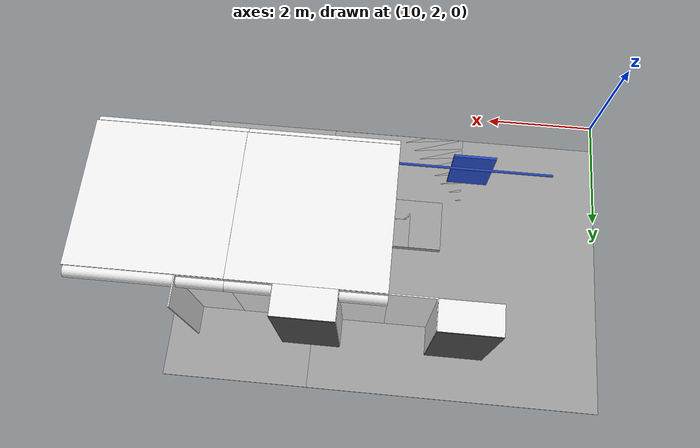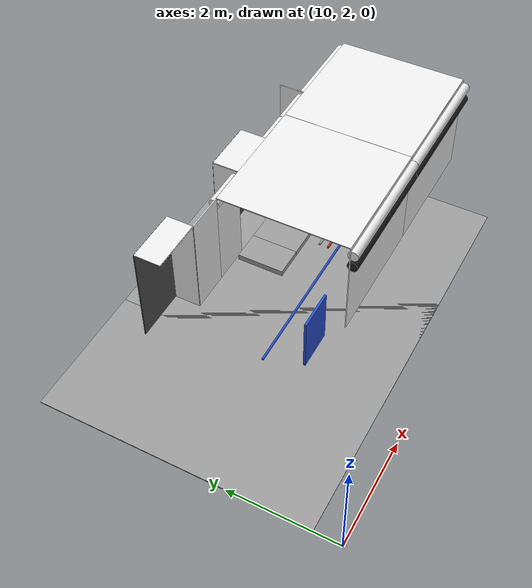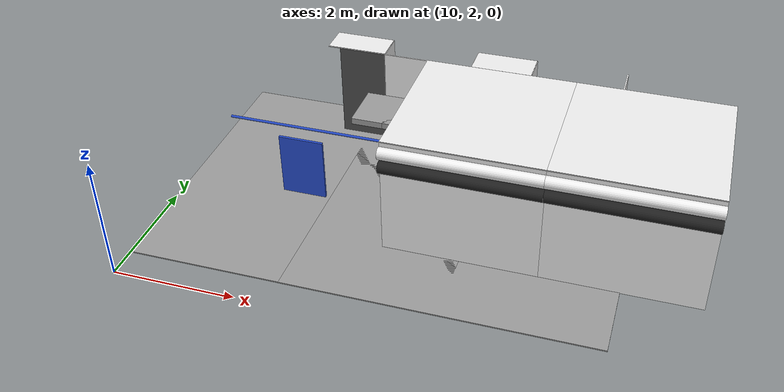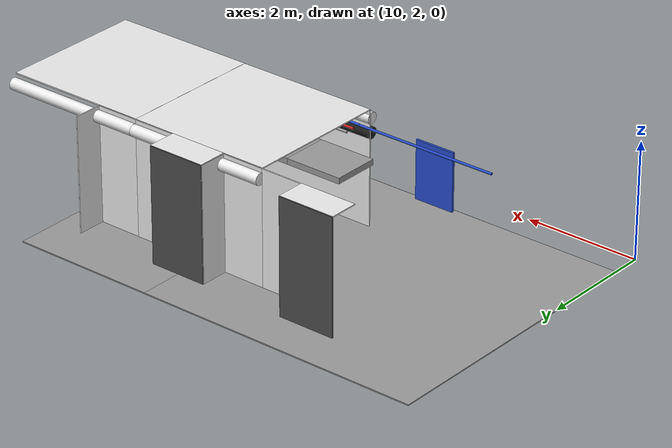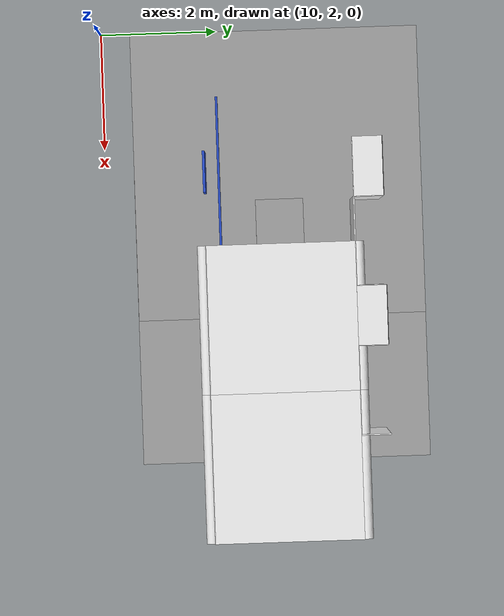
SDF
<sdf version="1.6">
 <world name="default">
  <model name="ceiling_1_5_2_2_1">
   <pose>13.5 5.0 1.7 0.0 0.0 -1.57</pose>
   <link name="link_1">
    <visual name="visual">
     <geometry><box><size>0.8 1 0.1</size></box></geometry>
     <material>
      <script><uri>file://media/materials/scripts/gazebo.material</uri><name>Gazebo/Grey</name></script>
     </material>
    </visual>
    <collision name="collision"><geometry><box><size>0.8 1 0.1</size></box></geometry></collision>
   </link>
   <static>1</static>
  </model>
  <model name="blue_pipe_right_5_2_0_1">
   <static>1</static>
   <pose>12.5 5.0 1.84 0.0 0.0 -1.57</pose>
   <link name="link_0">
    <visual name="visual">
     <pose>1 0 0 1.57 0 0</pose>
     <geometry><cylinder><radius>0.02</radius><length>2.5</length></cylinder></geometry>
     <material>
      <script><uri>file://media/materials/scripts/gazebo.material</uri><name>Gazebo/Blue</name></script>
     </material>
    </visual>
    <collision name="collision">
     <pose>1 0 0 1.57 0 0</pose>
     <geometry><cylinder><radius>0.02</radius><length>2.5</length></cylinder></geometry>
    </collision>
   </link>
  </model>
  <model name="panel_5_2_0_1">
   <static>1</static>
   <pose>12.5 3.75 1.3 0.0 0.0 -1.57</pose>
   <link name="link">
    <collision name="collision"><geometry><box><size>0.04 0.7 1</size></box></geometry></collision>
    <visual name="visual">
     <material>
      <script><name>Gazebo/Blue</name><uri>file://media/materials/scripts/gazebo.material</uri></script>
     </material>
     <geometry><box><size>0.04 0.7 1</size></box></geometry>
    </visual>
   </link>
  </model>
  <model name="wall_left_front_left_5_2_0_1">
   <static>1</static>
   <pose>13.375 6.25 1.0 0.0 0.0 0.0</pose>
   <link name="link">
    <collision name="collision"><geometry><box><size>0.75 0.02 2.0</size></box></geometry></collision>
    <visual name="visual">
     <material>
      <script><name>Gazebo/White</name><uri>file://media/materials/scripts/gazebo.material</uri></script>
     </material>
     <geometry><box><size>0.75 0.02 2.0</size></box></geometry>
    </visual>
   </link>
  </model>
  <model name="wall_left_front_up_5_2_0_1">
   <static>1</static>
   <pose>12.5 6.25 2.0 0.0 0.0 0.0</pose>
   <link name="link">
    <collision name="collision"><geometry><box><size>1.0 0.02 0.001</size></box></geometry></collision>
    <visual name="visual">
     <material>
      <script><name>Gazebo/White</name><uri>file://media/materials/scripts/gazebo.material</uri></script>
     </material>
     <geometry><box><size>1.0 0.02 0.001</size></box></geometry>
    </visual>
   </link>
  </model>
  <model name="wall_left_inside_back_5_2_0_1">
   <static>1</static>
   <pose>12.5 6.75 1.0 0.0 0.0 0.0</pose>
   <link name="link">
    <collision name="collision"><geometry><box><size>1 0.02 2</size></box></geometry></collision>
    <visual name="visual">
     <material>
      <script><name>Gazebo/DarkGrey</name><uri>file://media/materials/scripts/gazebo.material</uri></script>
     </material>
     <geometry><box><size>1 0.02 2</size></box></geometry>
    </visual>
   </link>
  </model>
  <model name="wall_left_inside_left_5_2_0_1">
   <static>1</static>
   <pose>13.0 6.5 1.0 0.0 0.0 -1.57</pose>
   <link name="link">
    <collision name="collision"><geometry><box><size>0.5 0.02 2</size></box></geometry></collision>
    <visual name="visual">
     <material>
      <script><name>Gazebo/White</name><uri>file://media/materials/scripts/gazebo.material</uri></script>
     </material>
     <geometry><box><size>0.5 0.02 2</size></box></geometry>
    </visual>
   </link>
  </model>
  <model name="wall_left_inside_top_5_2_0_1">
   <static>1</static>
   <pose>12.5 6.5 2.0 1.57 0.0 0.0</pose>
   <link name="link">
    <collision name="collision"><geometry><box><size>1 0.02 0.5</size></box></geometry></collision>
    <visual name="visual">
     <material>
      <script><name>Gazebo/White</name><uri>file://media/materials/scripts/gazebo.material</uri></script>
     </material>
     <geometry><box><size>1 0.02 0.5</size></box></geometry>
    </visual>
   </link>
  </model>
  <model name="wall_bottom_5_2_0_1">
   <static>1</static>
   <pose>12.5 5.0 0.0 0.0 0.0 -1.57</pose>
   <link name="link">
    <collision name="collision"><geometry><box><size>5.0 5.0 0.02</size></box></geometry></collision>
    <visual name="visual">
     <material>
      <script><name>Gazebo/Grey</name><uri>file://media/materials/scripts/gazebo.material</uri></script>
     </material>
     <geometry><box><size>5.0 5.0 0.02</size></box></geometry>
    </visual>
   </link>
  </model>
  <model name="wall_right_6_2_0_1">
   <static>1</static>
   <pose>15.0 3.75 1.0 0.0 0.0 0.0</pose>
   <link name="link">
    <collision name="collision"><geometry><box><size>2.5 0.02 2.0</size></box></geometry></collision>
    <visual name="visual">
     <material>
      <script><name>Gazebo/White</name><uri>file://media/materials/scripts/gazebo.material</uri></script>
     </material>
     <geometry><box><size>2.5 0.02 2.0</size></box></geometry>
    </visual>
   </link>
  </model>
  <model name="wall_top_6_2_0_1">
   <static>1</static>
   <pose>15.0 5.0 2.0 1.57 0.0 -1.57</pose>
   <link name="link">
    <collision name="collision"><geometry><box><size>2.5 0.02 2.5</size></box></geometry></collision>
    <visual name="visual">
     <material>
      <script><name>Gazebo/White</name><uri>file://media/materials/scripts/gazebo.material</uri></script>
     </material>
     <geometry><box><size>2.5 0.02 2.5</size></box></geometry>
    </visual>
   </link>
  </model>
  <model name="ceiling_1_6_2_0_1">
   <pose>15.0 5.0 1.7 0.0 0.0 -1.57</pose>
   <link name="link_1">
    <visual name="visual">
     <geometry><box><size>0.8 1 0.1</size></box></geometry>
     <material>
      <script><uri>file://media/materials/scripts/gazebo.material</uri><name>Gazebo/Grey</name></script>
     </material>
    </visual>
    <collision name="collision"><geometry><box><size>0.8 1 0.1</size></box></geometry></collision>
   </link>
   <static>1</static>
  </model>
  <model name="ceiling_1_6_2_1_1">
   <pose>14.0 5.0 1.7 0.0 0.0 -1.57</pose>
   <link name="link_1">
    <visual name="visual">
     <geometry><box><size>0.8 1 0.1</size></box></geometry>
     <material>
      <script><uri>file://media/materials/scripts/gazebo.material</uri><name>Gazebo/Grey</name></script>
     </material>
    </visual>
    <collision name="collision"><geometry><box><size>0.8 1 0.1</size></box></geometry></collision>
   </link>
   <static>1</static>
  </model>
  <model name="ceiling_1_6_2_2_1">
   <pose>16.0 5.0 1.7 0.0 0.0 -1.57</pose>
   <link name="link_1">
    <visual name="visual">
     <geometry><box><size>0.8 1 0.1</size></box></geometry>
     <material>
      <script><uri>file://media/materials/scripts/gazebo.material</uri><name>Gazebo/Grey</name></script>
     </material>
    </visual>
    <collision name="collision"><geometry><box><size>0.8 1 0.1</size></box></geometry></collision>
   </link>
   <static>1</static>
  </model>
  <model name="white_pipe_left_6_2_0_1">
   <static>1</static>
   <pose>15.0 5.0 1.84 0.0 0.0 -1.57</pose>
   <link name="link_0">
    <visual name="visual">
     <pose>-1.3 0 0 1.57 0 0</pose>
     <geometry><cylinder><radius>0.1</radius><length>2.5</length></cylinder></geometry>
     <material>
      <script><uri>file://media/materials/scripts/gazebo.material</uri><name>Gazebo/White</name></script>
     </material>
    </visual>
    <collision name="collision">
     <pose>-1.3 0 0 1.57 0 0</pose>
     <geometry><cylinder><radius>0.1</radius><length>2.5</length></cylinder></geometry>
    </collision>
   </link>
  </model>
  <model name="white_pipe_right_6_2_0_1">
   <static>1</static>
   <pose>15.0 5.0 1.84 0.0 0.0 -1.57</pose>
   <link name="link_0">
    <visual name="visual">
     <pose>1.3 0 0 1.57 0 0</pose>
     <geometry><cylinder><radius>0.1</radius><length>2.5</length></cylinder></geometry>
     <material>
      <script><uri>file://media/materials/scripts/gazebo.material</uri><name>Gazebo/White</name></script>
     </material>
    </visual>
    <collision name="collision">
     <pose>1.3 0 0 1.57 0 0</pose>
     <geometry><cylinder><radius>0.1</radius><length>2.5</length></cylinder></geometry>
    </collision>
   </link>
  </model>
  <model name="black_pipe_right_6_2_0_1">
   <static>1</static>
   <pose>15.0 5.0 1.84 0.0 0.0 -1.57</pose>
   <link name="link_0">
    <visual name="visual">
     <pose>1.3 0 -0.25 1.57 0 0</pose>
     <geometry><cylinder><radius>0.1</radius><length>2.5</length></cylinder></geometry>
     <material>
      <script><uri>file://media/materials/scripts/gazebo.material</uri><name>Gazebo/Black</name></script>
     </material>
    </visual>
    <collision name="collision">
     <pose>1.3 0 -0.25 1.57 0 0</pose>
     <geometry><cylinder><radius>0.1</radius><length>2.5</length></cylinder></geometry>
    </collision>
   </link>
  </model>
  <model name="grey_pipe_right_6_2_0_1">
   <static>1</static>
   <pose>15.0 5.0 1.84 0.0 0.0 -1.57</pose>
   <link name="link_0">
    <visual name="visual">
     <pose>0.7 0 0 1.57 0 0</pose>
     <geometry><cylinder><radius>0.02</radius><length>2.5</length></cylinder></geometry>
     <material>
      <script><uri>file://media/materials/scripts/gazebo.material</uri><name>Gazebo/Grey</name></script>
     </material>
    </visual>
    <collision name="collision">
     <pose>0.7 0 0 1.57 0 0</pose>
     <geometry><cylinder><radius>0.02</radius><length>2.5</length></cylinder></geometry>
    </collision>
   </link>
  </model>
  <model name="red_pipe_right_6_2_0_1">
   <static>1</static>
   <pose>15.0 5.0 1.84 0.0 0.0 -1.57</pose>
   <link name="link_0">
    <visual name="visual">
     <pose>0.85 0 0 1.57 0 0</pose>
     <geometry><cylinder><radius>0.02</radius><length>2.5</length></cylinder></geometry>
     <material>
      <script><uri>file://media/materials/scripts/gazebo.material</uri><name>Gazebo/Red</name></script>
     </material>
    </visual>
    <collision name="collision">
     <pose>0.85 0 0 1.57 0 0</pose>
     <geometry><cylinder><radius>0.02</radius><length>2.5</length></cylinder></geometry>
    </collision>
   </link>
  </model>
  <model name="blue_pipe_right_6_2_0_1">
   <static>1</static>
   <pose>15.0 5.0 1.84 0.0 0.0 -1.57</pose>
   <link name="link_0">
    <visual name="visual">
     <pose>1 0 0 1.57 0 0</pose>
     <geometry><cylinder><radius>0.02</radius><length>2.5</length></cylinder></geometry>
     <material>
      <script><uri>file://media/materials/scripts/gazebo.material</uri><name>Gazebo/Blue</name></script>
     </material>
    </visual>
    <collision name="collision">
     <pose>1 0 0 1.57 0 0</pose>
     <geometry><cylinder><radius>0.02</radius><length>2.5</length></cylinder></geometry>
    </collision>
   </link>
  </model>
  <model name="wall_left_front_left_6_2_0_1">
   <static>1</static>
   <pose>15.875 6.25 1.0 0.0 0.0 0.0</pose>
   <link name="link">
    <collision name="collision"><geometry><box><size>0.75 0.02 2.0</size></box></geometry></collision>
    <visual name="visual">
     <material>
      <script><name>Gazebo/White</name><uri>file://media/materials/scripts/gazebo.material</uri></script>
     </material>
     <geometry><box><size>0.75 0.02 2.0</size></box></geometry>
    </visual>
   </link>
  </model>
  <model name="wall_left_front_right_6_2_0_1">
   <static>1</static>
   <pose>14.125 6.25 1.0 0.0 0.0 0.0</pose>
   <link name="link">
    <collision name="collision"><geometry><box><size>0.75 0.02 2.0</size></box></geometry></collision>
    <visual name="visual">
     <material>
      <script><name>Gazebo/White</name><uri>file://media/materials/scripts/gazebo.material</uri></script>
     </material>
     <geometry><box><size>0.75 0.02 2.0</size></box></geometry>
    </visual>
   </link>
  </model>
  <model name="wall_left_front_up_6_2_0_1">
   <static>1</static>
   <pose>15.0 6.25 2.0 0.0 0.0 0.0</pose>
   <link name="link">
    <collision name="collision"><geometry><box><size>1.0 0.02 0.001</size></box></geometry></collision>
    <visual name="visual">
     <material>
      <script><name>Gazebo/White</name><uri>file://media/materials/scripts/gazebo.material</uri></script>
     </material>
     <geometry><box><size>1.0 0.02 0.001</size></box></geometry>
    </visual>
   </link>
  </model>
  <model name="wall_left_inside_back_6_2_0_1">
   <static>1</static>
   <pose>15.0 6.75 1.0 0.0 0.0 0.0</pose>
   <link name="link">
    <collision name="collision"><geometry><box><size>1 0.02 2</size></box></geometry></collision>
    <visual name="visual">
     <material>
      <script><name>Gazebo/DarkGrey</name><uri>file://media/materials/scripts/gazebo.material</uri></script>
     </material>
     <geometry><box><size>1 0.02 2</size></box></geometry>
    </visual>
   </link>
  </model>
  <model name="wall_left_inside_left_6_2_0_1">
   <static>1</static>
   <pose>15.5 6.5 1.0 0.0 0.0 -1.57</pose>
   <link name="link">
    <collision name="collision"><geometry><box><size>0.5 0.02 2</size></box></geometry></collision>
    <visual name="visual">
     <material>
      <script><name>Gazebo/White</name><uri>file://media/materials/scripts/gazebo.material</uri></script>
     </material>
     <geometry><box><size>0.5 0.02 2</size></box></geometry>
    </visual>
   </link>
  </model>
  <model name="wall_left_inside_right_6_2_0_1">
   <static>1</static>
   <pose>14.5 6.5 1.0 0.0 0.0 -1.57</pose>
   <link name="link">
    <collision name="collision"><geometry><box><size>0.5 0.02 2</size></box></geometry></collision>
    <visual name="visual">
     <material>
      <script><name>Gazebo/White</name><uri>file://media/materials/scripts/gazebo.material</uri></script>
     </material>
     <geometry><box><size>0.5 0.02 2</size></box></geometry>
    </visual>
   </link>
  </model>
  <model name="wall_left_inside_top_6_2_0_1">
   <static>1</static>
   <pose>15.0 6.5 2.0 1.57 0.0 0.0</pose>
   <link name="link">
    <collision name="collision"><geometry><box><size>1 0.02 0.5</size></box></geometry></collision>
    <visual name="visual">
     <material>
      <script><name>Gazebo/White</name><uri>file://media/materials/scripts/gazebo.material</uri></script>
     </material>
     <geometry><box><size>1 0.02 0.5</size></box></geometry>
    </visual>
   </link>
  </model>
  <model name="wall_bottom_6_2_0_1">
   <static>1</static>
   <pose>15.0 5.0 0.0 0.0 0.0 -1.57</pose>
   <link name="link">
    <collision name="collision"><geometry><box><size>5.0 5.0 0.02</size></box></geometry></collision>
    <visual name="visual">
     <material>
      <script><name>Gazebo/Grey</name><uri>file://media/materials/scripts/gazebo.material</uri></script>
     </material>
     <geometry><box><size>5.0 5.0 0.02</size></box></geometry>
    </visual>
   </link>
  </model>
  <model name="wall_right_7_2_0_1">
   <static>1</static>
   <pose>17.5 3.75 1.0 0.0 0.0 0.0</pose>
   <link name="link">
    <collision name="collision"><geometry><box><size>2.5 0.02 2.0</size></box></geometry></collision>
    <visual name="visual">
     <material>
      <script><name>Gazebo/White</name><uri>file://media/materials/scripts/gazebo.material</uri></script>
     </material>
     <geometry><box><size>2.5 0.02 2.0</size></box></geometry>
    </visual>
   </link>
  </model>
  <model name="wall_top_7_2_0_1">
   <static>1</static>
   <pose>17.5 5.0 2.0 1.57 0.0 -1.57</pose>
   <link name="link">
    <collision name="collision"><geometry><box><size>2.5 0.02 2.5</size></box></geometry></collision>
    <visual name="visual">
     <material>
      <script><name>Gazebo/White</name><uri>file://media/materials/scripts/gazebo.material</uri></script>
     </material>
     <geometry><box><size>2.5 0.02 2.5</size></box></geometry>
    </visual>
   </link>
  </model>
  <model name="ceiling_1_7_2_0_1">
   <pose>17.5 5.0 1.7 0.0 0.0 -1.57</pose>
   <link name="link_1">
    <visual name="visual">
     <geometry><box><size>0.8 1 0.1</size></box></geometry>
     <material>
      <script><uri>file://media/materials/scripts/gazebo.material</uri><name>Gazebo/Grey</name></script>
     </material>
    </visual>
    <collision name="collision"><geometry><box><size>0.8 1 0.1</size></box></geometry></collision>
   </link>
   <static>1</static>
  </model>
  <model name="ceiling_1_7_2_1_1">
   <pose>16.5 5.0 1.7 0.0 0.0 -1.57</pose>
   <link name="link_1">
    <visual name="visual">
     <geometry><box><size>0.8 1 0.1</size></box></geometry>
     <material>
      <script><uri>file://media/materials/scripts/gazebo.material</uri><name>Gazebo/Grey</name></script>
     </material>
    </visual>
    <collision name="collision"><geometry><box><size>0.8 1 0.1</size></box></geometry></collision>
   </link>
   <static>1</static>
  </model>
  <model name="white_pipe_left_7_2_0_1">
   <static>1</static>
   <pose>17.5 5.0 1.84 0.0 0.0 -1.57</pose>
   <link name="link_0">
    <visual name="visual">
     <pose>-1.3 0 0 1.57 0 0</pose>
     <geometry><cylinder><radius>0.1</radius><length>2.5</length></cylinder></geometry>
     <material>
      <script><uri>file://media/materials/scripts/gazebo.material</uri><name>Gazebo/White</name></script>
     </material>
    </visual>
    <collision name="collision">
     <pose>-1.3 0 0 1.57 0 0</pose>
     <geometry><cylinder><radius>0.1</radius><length>2.5</length></cylinder></geometry>
    </collision>
   </link>
  </model>
  <model name="white_pipe_right_7_2_0_1">
   <static>1</static>
   <pose>17.5 5.0 1.84 0.0 0.0 -1.57</pose>
   <link name="link_0">
    <visual name="visual">
     <pose>1.3 0 0 1.57 0 0</pose>
     <geometry><cylinder><radius>0.1</radius><length>2.5</length></cylinder></geometry>
     <material>
      <script><uri>file://media/materials/scripts/gazebo.material</uri><name>Gazebo/White</name></script>
     </material>
    </visual>
    <collision name="collision">
     <pose>1.3 0 0 1.57 0 0</pose>
     <geometry><cylinder><radius>0.1</radius><length>2.5</length></cylinder></geometry>
    </collision>
   </link>
  </model>
  <model name="black_pipe_right_7_2_0_1">
   <static>1</static>
   <pose>17.5 5.0 1.84 0.0 0.0 -1.57</pose>
   <link name="link_0">
    <visual name="visual">
     <pose>1.3 0 -0.25 1.57 0 0</pose>
     <geometry><cylinder><radius>0.1</radius><length>2.5</length></cylinder></geometry>
     <material>
      <script><uri>file://media/materials/scripts/gazebo.material</uri><name>Gazebo/Black</name></script>
     </material>
    </visual>
    <collision name="collision">
     <pose>1.3 0 -0.25 1.57 0 0</pose>
     <geometry><cylinder><radius>0.1</radius><length>2.5</length></cylinder></geometry>
    </collision>
   </link>
  </model>
  <model name="grey_pipe_right_7_2_0_1">
   <static>1</static>
   <pose>17.5 5.0 1.84 0.0 0.0 -1.57</pose>
   <link name="link_0">
    <visual name="visual">
     <pose>0.7 0 0 1.57 0 0</pose>
     <geometry><cylinder><radius>0.02</radius><length>2.5</length></cylinder></geometry>
     <material>
      <script><uri>file://media/materials/scripts/gazebo.material</uri><name>Gazebo/Grey</name></script>
     </material>
    </visual>
    <collision name="collision">
     <pose>0.7 0 0 1.57 0 0</pose>
     <geometry><cylinder><radius>0.02</radius><length>2.5</length></cylinder></geometry>
    </collision>
   </link>
  </model>
  <model name="red_pipe_right_7_2_0_1">
   <static>1</static>
   <pose>17.5 5.0 1.84 0.0 0.0 -1.57</pose>
   <link name="link_0">
    <visual name="visual">
     <pose>0.85 0 0 1.57 0 0</pose>
     <geometry><cylinder><radius>0.02</radius><length>2.5</length></cylinder></geometry>
     <material>
      <script><uri>file://media/materials/scripts/gazebo.material</uri><name>Gazebo/Red</name></script>
     </material>
    </visual>
    <collision name="collision">
     <pose>0.85 0 0 1.57 0 0</pose>
     <geometry><cylinder><radius>0.02</radius><length>2.5</length></cylinder></geometry>
    </collision>
   </link>
  </model>
  <model name="blue_pipe_right_7_2_0_1">
   <static>1</static>
   <pose>17.5 5.0 1.84 0.0 0.0 -1.57</pose>
   <link name="link_0">
    <visual name="visual">
     <pose>1 0 0 1.57 0 0</pose>
     <geometry><cylinder><radius>0.02</radius><length>2.5</length></cylinder></geometry>
     <material>
      <script><uri>file://media/materials/scripts/gazebo.material</uri><name>Gazebo/Blue</name></script>
     </material>
    </visual>
    <collision name="collision">
     <pose>1 0 0 1.57 0 0</pose>
     <geometry><cylinder><radius>0.02</radius><length>2.5</length></cylinder></geometry>
    </collision>
   </link>
  </model>
  <model name="wall_left_front_right_7_2_0_1">
   <static>1</static>
   <pose>16.625 6.25 1.0 0.0 0.0 0.0</pose>
   <link name="link">
    <collision name="collision"><geometry><box><size>0.75 0.02 2.0</size></box></geometry></collision>
    <visual name="visual">
     <material>
      <script><name>Gazebo/White</name><uri>file://media/materials/scripts/gazebo.material</uri></script>
     </material>
     <geometry><box><size>0.75 0.02 2.0</size></box></geometry>
    </visual>
   </link>
  </model>
  <model name="wall_left_inside_right_7_2_0_1">
   <static>1</static>
   <pose>17.0 6.5 1.0 0.0 0.0 -1.57</pose>
   <link name="link">
    <collision name="collision"><geometry><box><size>0.5 0.02 2</size></box></geometry></collision>
    <visual name="visual">
     <material>
      <script><name>Gazebo/White</name><uri>file://media/materials/scripts/gazebo.material</uri></script>
     </material>
     <geometry><box><size>0.5 0.02 2</size></box></geometry>
    </visual>
   </link>
  </model>
 </world>
</sdf>
